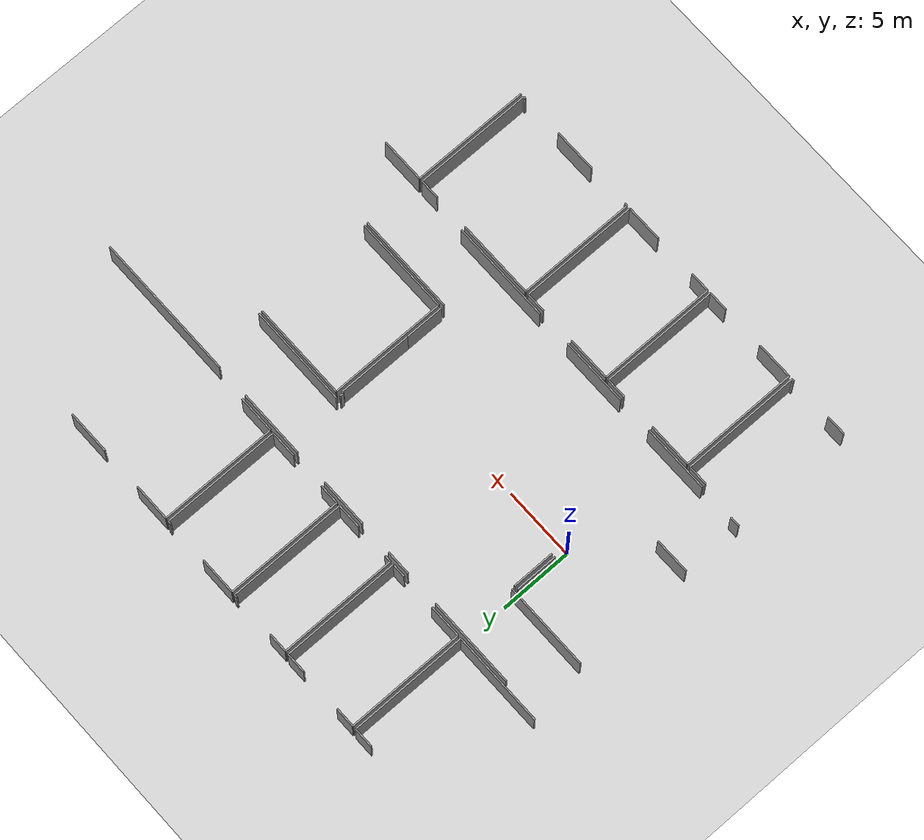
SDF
<sdf version="1.6">
 <world name="default">
  <model name="ground_plane">
   <static>1</static>
   <link name="link">
    <collision name="collision">
     <geometry><plane><normal>0 0 1</normal><size>100 100</size></plane></geometry>
     <surface><friction><ode><mu>100</mu><mu2>50</mu2></ode></friction></surface>
    </collision>
    <visual name="visual">
     <cast_shadows>0</cast_shadows>
     <geometry><plane><normal>0 0 1</normal><size>100 100</size></plane></geometry>
     <material>
      <script><uri>file://media/materials/scripts/gazebo.material</uri><name>Gazebo/Grey</name></script>
     </material>
    </visual>
   </link>
  </model>
  <model name="50041185">
   <static>1</static>
   <link name="Wall_59">
    <collision name="Wall_59_Collision">
     <geometry><box><size>1.38321534336 0.1 2.5</size></box></geometry>
     <pose>0.691607671679 0 1.25 0 0 0</pose>
    </collision>
    <visual name="Wall_59_Visual">
     <pose>0.691607671679 0 1.25 0 0 0</pose>
     <geometry><box><size>1.38321534336 0.1 2.5</size></box></geometry>
     <material>
      <script><uri>file://media/materials/scripts/gazebo.material</uri><name>Gazebo/Grey</name></script>
      <ambient>1 1 1 1</ambient>
     </material>
    </visual>
    <pose>69.0018048018 -25.3483140355 0 0 0 0.0</pose>
   </link>
   <link name="Wall_60">
    <collision name="Wall_60_Collision">
     <geometry><box><size>8.23866597186 0.1 2.5</size></box></geometry>
     <pose>4.11933298593 0 1.25 0 0 0</pose>
    </collision>
    <visual name="Wall_60_Visual">
     <pose>4.11933298593 0 1.25 0 0 0</pose>
     <geometry><box><size>8.23866597186 0.1 2.5</size></box></geometry>
     <material>
      <script><uri>file://media/materials/scripts/gazebo.material</uri><name>Gazebo/Grey</name></script>
      <ambient>1 1 1 1</ambient>
     </material>
    </visual>
    <pose>70.3850201451 -25.3483140355 0 0 0 -1.57079632679</pose>
   </link>
   <link name="Wall_61">
    <collision name="Wall_61_Collision">
     <geometry><box><size>0.181496968696 0.1 2.5</size></box></geometry>
     <pose>0.0907484843478 0 1.25 0 0 0</pose>
    </collision>
    <visual name="Wall_61_Visual">
     <pose>0.0907484843478 0 1.25 0 0 0</pose>
     <geometry><box><size>0.181496968696 0.1 2.5</size></box></geometry>
     <material>
      <script><uri>file://media/materials/scripts/gazebo.material</uri><name>Gazebo/Grey</name></script>
      <ambient>1 1 1 1</ambient>
     </material>
    </visual>
    <pose>70.3850201451 -33.5869800074 0 0 0 3.14159265359</pose>
   </link>
   <link name="Wall_62">
    <collision name="Wall_62_Collision">
     <geometry><box><size>1.39465876841 0.1 2.5</size></box></geometry>
     <pose>0.697329384206 0 1.25 0 0 0</pose>
    </collision>
    <visual name="Wall_62_Visual">
     <pose>0.697329384206 0 1.25 0 0 0</pose>
     <geometry><box><size>1.39465876841 0.1 2.5</size></box></geometry>
     <material>
      <script><uri>file://media/materials/scripts/gazebo.material</uri><name>Gazebo/Grey</name></script>
      <ambient>1 1 1 1</ambient>
     </material>
    </visual>
    <pose>67.2188639917 -33.5869800074 0 0 0 -3.13904094128</pose>
   </link>
   <link name="Wall_63">
    <collision name="Wall_63_Collision">
     <geometry><box><size>8.23663239238 0.1 2.5</size></box></geometry>
     <pose>4.11831619619 0 1.25 0 0 0</pose>
    </collision>
    <visual name="Wall_63_Visual">
     <pose>4.11831619619 0 1.25 0 0 0</pose>
     <geometry><box><size>8.23663239238 0.1 2.5</size></box></geometry>
     <material>
      <script><uri>file://media/materials/scripts/gazebo.material</uri><name>Gazebo/Grey</name></script>
      <ambient>1 1 1 1</ambient>
     </material>
    </visual>
    <pose>70.6310832624 -33.5869800074 0 0 0 1.57079632679</pose>
   </link>
   <link name="Wall_64">
    <collision name="Wall_64_Collision">
     <geometry><box><size>3.09637895754 0.1 2.5</size></box></geometry>
     <pose>1.54818947877 0 1.25 0 0 0</pose>
    </collision>
    <visual name="Wall_64_Visual">
     <pose>1.54818947877 0 1.25 0 0 0</pose>
     <geometry><box><size>3.09637895754 0.1 2.5</size></box></geometry>
     <material>
      <script><uri>file://media/materials/scripts/gazebo.material</uri><name>Gazebo/Grey</name></script>
      <ambient>1 1 1 1</ambient>
     </material>
    </visual>
    <pose>70.6310832624 -25.350347615 0 0 0 0.0</pose>
   </link>
   <link name="Wall_65">
    <collision name="Wall_65_Collision">
     <geometry><box><size>1.38766379847 0.1 2.5</size></box></geometry>
     <pose>0.693831899236 0 1.25 0 0 0</pose>
    </collision>
    <visual name="Wall_65_Visual">
     <pose>0.693831899236 0 1.25 0 0 0</pose>
     <geometry><box><size>1.38766379847 0.1 2.5</size></box></geometry>
     <material>
      <script><uri>file://media/materials/scripts/gazebo.material</uri><name>Gazebo/Grey</name></script>
      <ambient>1 1 1 1</ambient>
     </material>
    </visual>
    <pose>76.2188512818 -25.350347615 0 0 0 0.0</pose>
   </link>
   <link name="Wall_66">
    <collision name="Wall_66_Collision">
     <geometry><box><size>8.2375220834 0.1 2.5</size></box></geometry>
     <pose>4.1187610417 0 1.25 0 0 0</pose>
    </collision>
    <visual name="Wall_66_Visual">
     <pose>4.1187610417 0 1.25 0 0 0</pose>
     <geometry><box><size>8.2375220834 0.1 2.5</size></box></geometry>
     <material>
      <script><uri>file://media/materials/scripts/gazebo.material</uri><name>Gazebo/Grey</name></script>
      <ambient>1 1 1 1</ambient>
     </material>
    </visual>
    <pose>77.6065150803 -25.350347615 0 0 0 -1.57079632679</pose>
   </link>
   <link name="Wall_67">
    <collision name="Wall_67_Collision">
     <geometry><box><size>1.39605231383 0.1 2.5</size></box></geometry>
     <pose>0.698026156916 0 1.25 0 0 0</pose>
    </collision>
    <visual name="Wall_67_Visual">
     <pose>0.698026156916 0 1.25 0 0 0</pose>
     <geometry><box><size>1.39605231383 0.1 2.5</size></box></geometry>
     <material>
      <script><uri>file://media/materials/scripts/gazebo.material</uri><name>Gazebo/Grey</name></script>
      <ambient>1 1 1 1</ambient>
     </material>
    </visual>
    <pose>77.6065150803 -33.5878696984 0 0 0 3.14159265359</pose>
   </link>
   <link name="Wall_68">
    <collision name="Wall_68_Collision">
     <geometry><box><size>2.58785714146 0.1 2.5</size></box></geometry>
     <pose>1.29392857073 0 1.25 0 0 0</pose>
    </collision>
    <visual name="Wall_68_Visual">
     <pose>1.29392857073 0 1.25 0 0 0</pose>
     <geometry><box><size>2.58785714146 0.1 2.5</size></box></geometry>
     <material>
      <script><uri>file://media/materials/scripts/gazebo.material</uri><name>Gazebo/Grey</name></script>
      <ambient>1 1 1 1</ambient>
     </material>
    </visual>
    <pose>73.2189402509 -33.5878696984 0 0 0 3.14124885909</pose>
   </link>
   <link name="Wall_69">
    <collision name="Wall_69_Collision">
     <geometry><box><size>8.23663239238 0.1 2.5</size></box></geometry>
     <pose>4.11831619619 0 1.25 0 0 0</pose>
    </collision>
    <visual name="Wall_69_Visual">
     <pose>4.11831619619 0 1.25 0 0 0</pose>
     <geometry><box><size>8.23663239238 0.1 2.5</size></box></geometry>
     <material>
      <script><uri>file://media/materials/scripts/gazebo.material</uri><name>Gazebo/Grey</name></script>
      <ambient>1 1 1 1</ambient>
     </material>
    </visual>
    <pose>77.8359282655 -33.5869800074 0 0 0 1.57079632679</pose>
   </link>
   <link name="Wall_70">
    <collision name="Wall_70_Collision">
     <geometry><box><size>3.08735494859 0.1 2.5</size></box></geometry>
     <pose>1.54367747429 0 1.25 0 0 0</pose>
    </collision>
    <visual name="Wall_70_Visual">
     <pose>1.54367747429 0 1.25 0 0 0</pose>
     <geometry><box><size>3.08735494859 0.1 2.5</size></box></geometry>
     <material>
      <script><uri>file://media/materials/scripts/gazebo.material</uri><name>Gazebo/Grey</name></script>
      <ambient>1 1 1 1</ambient>
     </material>
    </visual>
    <pose>77.8359282655 -25.350347615 0 0 0 0.0</pose>
   </link>
   <link name="Wall_71">
    <collision name="Wall_71_Collision">
     <geometry><box><size>1.38181725746 0.1 2.5</size></box></geometry>
     <pose>0.690908628732 0 1.25 0 0 0</pose>
    </collision>
    <visual name="Wall_71_Visual">
     <pose>0.690908628732 0 1.25 0 0 0</pose>
     <geometry><box><size>1.38181725746 0.1 2.5</size></box></geometry>
     <material>
      <script><uri>file://media/materials/scripts/gazebo.material</uri><name>Gazebo/Grey</name></script>
      <ambient>1 1 1 1</ambient>
     </material>
    </visual>
    <pose>83.4174684477 -25.350347615 0 0 0 0.0</pose>
   </link>
   <link name="Wall_72">
    <collision name="Wall_72_Collision">
     <geometry><box><size>8.23116714752 0.1 2.5</size></box></geometry>
     <pose>4.11558357376 0 1.25 0 0 0</pose>
    </collision>
    <visual name="Wall_72_Visual">
     <pose>4.11558357376 0 1.25 0 0 0</pose>
     <geometry><box><size>8.23116714752 0.1 2.5</size></box></geometry>
     <material>
      <script><uri>file://media/materials/scripts/gazebo.material</uri><name>Gazebo/Grey</name></script>
      <ambient>1 1 1 1</ambient>
     </material>
    </visual>
    <pose>84.7992857052 -25.350347615 0 0 0 -1.57079632679</pose>
   </link>
   <link name="Wall_73">
    <collision name="Wall_73_Collision">
     <geometry><box><size>2.57845168342 0.1 2.5</size></box></geometry>
     <pose>1.28922584171 0 1.25 0 0 0</pose>
    </collision>
    <visual name="Wall_73_Visual">
     <pose>1.28922584171 0 1.25 0 0 0</pose>
     <geometry><box><size>2.57845168342 0.1 2.5</size></box></geometry>
     <material>
      <script><uri>file://media/materials/scripts/gazebo.material</uri><name>Gazebo/Grey</name></script>
      <ambient>1 1 1 1</ambient>
     </material>
    </visual>
    <pose>84.7992857052 -33.5815147625 0 0 0 3.14159265359</pose>
   </link>
   <link name="Wall_74">
    <collision name="Wall_74_Collision">
     <geometry><box><size>1.39352105658 0.1 2.5</size></box></geometry>
     <pose>0.696760528292 0 1.25 0 0 0</pose>
    </collision>
    <visual name="Wall_74_Visual">
     <pose>0.696760528292 0 1.25 0 0 0</pose>
     <geometry><box><size>1.39352105658 0.1 2.5</size></box></geometry>
     <material>
      <script><uri>file://media/materials/scripts/gazebo.material</uri><name>Gazebo/Grey</name></script>
      <ambient>1 1 1 1</ambient>
     </material>
    </visual>
    <pose>79.229438605 -33.5815147625 0 0 0 -3.13767074739</pose>
   </link>
   <link name="Wall_75">
    <collision name="Wall_75_Collision">
     <geometry><box><size>8.23726788597 0.1 2.5</size></box></geometry>
     <pose>4.11863394298 0 1.25 0 0 0</pose>
    </collision>
    <visual name="Wall_75_Visual">
     <pose>4.11863394298 0 1.25 0 0 0</pose>
     <geometry><box><size>8.23726788597 0.1 2.5</size></box></geometry>
     <material>
      <script><uri>file://media/materials/scripts/gazebo.material</uri><name>Gazebo/Grey</name></script>
      <ambient>1 1 1 1</ambient>
     </material>
    </visual>
    <pose>85.0339099378 -33.5886322907 0 0 0 1.57079632679</pose>
   </link>
   <link name="Wall_76">
    <collision name="Wall_76_Collision">
     <geometry><box><size>5.50833132094 0.1 2.5</size></box></geometry>
     <pose>2.75416566047 0 1.25 0 0 0</pose>
    </collision>
    <visual name="Wall_76_Visual">
     <pose>2.75416566047 0 1.25 0 0 0</pose>
     <geometry><box><size>5.50833132094 0.1 2.5</size></box></geometry>
     <material>
      <script><uri>file://media/materials/scripts/gazebo.material</uri><name>Gazebo/Grey</name></script>
      <ambient>1 1 1 1</ambient>
     </material>
    </visual>
    <pose>85.0339099378 -25.3513644047 0 0 0 0.0</pose>
   </link>
   <link name="Wall_77">
    <collision name="Wall_77_Collision">
     <geometry><box><size>1.38219855362 0.1 2.5</size></box></geometry>
     <pose>0.691099276808 0 1.25 0 0 0</pose>
    </collision>
    <visual name="Wall_77_Visual">
     <pose>0.691099276808 0 1.25 0 0 0</pose>
     <geometry><box><size>1.38219855362 0.1 2.5</size></box></geometry>
     <material>
      <script><uri>file://media/materials/scripts/gazebo.material</uri><name>Gazebo/Grey</name></script>
      <ambient>1 1 1 1</ambient>
     </material>
    </visual>
    <pose>93.025368904 -25.3513644047 0 0 0 0.0</pose>
   </link>
   <link name="Wall_78">
    <collision name="Wall_78_Collision">
     <geometry><box><size>8.23129424624 0.1 2.5</size></box></geometry>
     <pose>4.11564712312 0 1.25 0 0 0</pose>
    </collision>
    <visual name="Wall_78_Visual">
     <pose>4.11564712312 0 1.25 0 0 0</pose>
     <geometry><box><size>8.23129424624 0.1 2.5</size></box></geometry>
     <material>
      <script><uri>file://media/materials/scripts/gazebo.material</uri><name>Gazebo/Grey</name></script>
      <ambient>1 1 1 1</ambient>
     </material>
    </visual>
    <pose>94.4075674576 -25.3513644047 0 0 0 -1.57079632679</pose>
   </link>
   <link name="Wall_79">
    <collision name="Wall_79_Collision">
     <geometry><box><size>0.18543702894 0.1 2.5</size></box></geometry>
     <pose>0.0927185144702 0 1.25 0 0 0</pose>
    </collision>
    <visual name="Wall_79_Visual">
     <pose>0.0927185144702 0 1.25 0 0 0</pose>
     <geometry><box><size>0.18543702894 0.1 2.5</size></box></geometry>
     <material>
      <script><uri>file://media/materials/scripts/gazebo.material</uri><name>Gazebo/Grey</name></script>
      <ambient>1 1 1 1</ambient>
     </material>
    </visual>
    <pose>94.4075674576 -33.582658651 0 0 0 3.14159265359</pose>
   </link>
   <link name="Wall_80">
    <collision name="Wall_80_Collision">
     <geometry><box><size>3.03473607951 0.1 2.5</size></box></geometry>
     <pose>1.51736803976 0 1.25 0 0 0</pose>
    </collision>
    <visual name="Wall_80_Visual">
     <pose>1.51736803976 0 1.25 0 0 0</pose>
     <geometry><box><size>3.03473607951 0.1 2.5</size></box></geometry>
     <material>
      <script><uri>file://media/materials/scripts/gazebo.material</uri><name>Gazebo/Grey</name></script>
      <ambient>1 1 1 1</ambient>
     </material>
    </visual>
    <pose>91.2561547554 -33.582658651 0 0 0 3.14159265359</pose>
   </link>
   <link name="Wall_81">
    <collision name="Wall_81_Collision">
     <geometry><box><size>0.206113604187 0.1 2.5</size></box></geometry>
     <pose>0.103056802093 0 1.25 0 0 0</pose>
    </collision>
    <visual name="Wall_81_Visual">
     <pose>0.103056802093 0 1.25 0 0 0</pose>
     <geometry><box><size>0.206113604187 0.1 2.5</size></box></geometry>
     <material>
      <script><uri>file://media/materials/scripts/gazebo.material</uri><name>Gazebo/Grey</name></script>
      <ambient>1 1 1 1</ambient>
     </material>
    </visual>
    <pose>85.239936959 -33.582658651 0 0 0 -3.11260632662</pose>
   </link>
   <link name="Wall_82">
    <collision name="Wall_82_Collision">
     <geometry><box><size>8.23409041803 0.1 2.5</size></box></geometry>
     <pose>4.11704520901 0 1.25 0 0 0</pose>
    </collision>
    <visual name="Wall_82_Visual">
     <pose>4.11704520901 0 1.25 0 0 0</pose>
     <geometry><box><size>8.23409041803 0.1 2.5</size></box></geometry>
     <material>
      <script><uri>file://media/materials/scripts/gazebo.material</uri><name>Gazebo/Grey</name></script>
      <ambient>1 1 1 1</ambient>
     </material>
    </visual>
    <pose>94.6537576736 -33.5854548228 0 0 0 1.57079632679</pose>
   </link>
   <link name="Wall_83">
    <collision name="Wall_83_Collision">
     <geometry><box><size>3.13272919076 0.1 2.5</size></box></geometry>
     <pose>1.56636459538 0 1.25 0 0 0</pose>
    </collision>
    <visual name="Wall_83_Visual">
     <pose>1.56636459538 0 1.25 0 0 0</pose>
     <geometry><box><size>3.13272919076 0.1 2.5</size></box></geometry>
     <material>
      <script><uri>file://media/materials/scripts/gazebo.material</uri><name>Gazebo/Grey</name></script>
      <ambient>1 1 1 1</ambient>
     </material>
    </visual>
    <pose>94.6537576736 -25.3513644047 0 0 0 0.0</pose>
   </link>
   <link name="Wall_172">
    <collision name="Wall_172_Collision">
     <geometry><box><size>2.96127302076 0.1 2.5</size></box></geometry>
     <pose>1.48063651038 0 1.25 0 0 0</pose>
    </collision>
    <visual name="Wall_172_Visual">
     <pose>1.48063651038 0 1.25 0 0 0</pose>
     <geometry><box><size>2.96127302076 0.1 2.5</size></box></geometry>
     <material>
      <script><uri>file://media/materials/scripts/gazebo.material</uri><name>Gazebo/Grey</name></script>
      <ambient>1 1 1 1</ambient>
     </material>
    </visual>
    <pose>71.6054220313 -12.7202938522 0 0 0 -1.57079632679</pose>
   </link>
   <link name="Wall_173">
    <collision name="Wall_173_Collision">
     <geometry><box><size>2.46348447286 0.1 2.5</size></box></geometry>
     <pose>1.23174223643 0 1.25 0 0 0</pose>
    </collision>
    <visual name="Wall_173_Visual">
     <pose>1.23174223643 0 1.25 0 0 0</pose>
     <geometry><box><size>2.46348447286 0.1 2.5</size></box></geometry>
     <material>
      <script><uri>file://media/materials/scripts/gazebo.material</uri><name>Gazebo/Grey</name></script>
      <ambient>1 1 1 1</ambient>
     </material>
    </visual>
    <pose>68.2913229706 -20.8683384385 0 0 0 -3.1347823162</pose>
   </link>
   <link name="Wall_174">
    <collision name="Wall_174_Collision">
     <geometry><box><size>2.70351682152 0.1 2.5</size></box></geometry>
     <pose>1.35175841076 0 1.25 0 0 0</pose>
    </collision>
    <visual name="Wall_174_Visual">
     <pose>1.35175841076 0 1.25 0 0 0</pose>
     <geometry><box><size>2.70351682152 0.1 2.5</size></box></geometry>
     <material>
      <script><uri>file://media/materials/scripts/gazebo.material</uri><name>Gazebo/Grey</name></script>
      <ambient>1 1 1 1</ambient>
     </material>
    </visual>
    <pose>87.6178268661 -18.168380381 0 0 0 -1.57079632679</pose>
   </link>
   <link name="Wall_175">
    <collision name="Wall_175_Collision">
     <geometry><box><size>0.251782559514 0.1 2.5</size></box></geometry>
     <pose>0.125891279757 0 1.25 0 0 0</pose>
    </collision>
    <visual name="Wall_175_Visual">
     <pose>0.125891279757 0 1.25 0 0 0</pose>
     <geometry><box><size>0.251782559514 0.1 2.5</size></box></geometry>
     <material>
      <script><uri>file://media/materials/scripts/gazebo.material</uri><name>Gazebo/Grey</name></script>
      <ambient>1 1 1 1</ambient>
     </material>
    </visual>
    <pose>87.4809415473 -12.7052962036 0 0 0 -1.57079632679</pose>
   </link>
   <link name="Wall_176">
    <collision name="Wall_176_Collision">
     <geometry><box><size>0.122268966306 0.1 2.5</size></box></geometry>
     <pose>0.0611344831531 0 1.25 0 0 0</pose>
    </collision>
    <visual name="Wall_176_Visual">
     <pose>0.0611344831531 0 1.25 0 0 0</pose>
     <geometry><box><size>0.122268966306 0.1 2.5</size></box></geometry>
     <material>
      <script><uri>file://media/materials/scripts/gazebo.material</uri><name>Gazebo/Grey</name></script>
      <ambient>1 1 1 1</ambient>
     </material>
    </visual>
    <pose>87.4809415473 -12.9570787631 0 0 0 0.0</pose>
   </link>
   <link name="Wall_177">
    <collision name="Wall_177_Collision">
     <geometry><box><size>5.21132211547 0.1 2.5</size></box></geometry>
     <pose>2.60566105773 0 1.25 0 0 0</pose>
    </collision>
    <visual name="Wall_177_Visual">
     <pose>2.60566105773 0 1.25 0 0 0</pose>
     <geometry><box><size>5.21132211547 0.1 2.5</size></box></geometry>
     <material>
      <script><uri>file://media/materials/scripts/gazebo.material</uri><name>Gazebo/Grey</name></script>
      <ambient>1 1 1 1</ambient>
     </material>
    </visual>
    <pose>87.6032105136 -12.9570787631 0 0 0 -1.56799159292</pose>
   </link>
   <link name="Wall_178">
    <collision name="Wall_178_Collision">
     <geometry><box><size>2.97779585404 0.1 2.5</size></box></geometry>
     <pose>1.48889792702 0 1.25 0 0 0</pose>
    </collision>
    <visual name="Wall_178_Visual">
     <pose>1.48889792702 0 1.25 0 0 0</pose>
     <geometry><box><size>2.97779585404 0.1 2.5</size></box></geometry>
     <material>
      <script><uri>file://media/materials/scripts/gazebo.material</uri><name>Gazebo/Grey</name></script>
      <ambient>1 1 1 1</ambient>
     </material>
    </visual>
    <pose>71.871948042 -15.6661879282 0 0 0 1.57079632679</pose>
   </link>
   <link name="Wall_179">
    <collision name="Wall_179_Collision">
     <geometry><box><size>8.18020056178 0.1 2.5</size></box></geometry>
     <pose>4.09010028089 0 1.25 0 0 0</pose>
    </collision>
    <visual name="Wall_179_Visual">
     <pose>4.09010028089 0 1.25 0 0 0</pose>
     <geometry><box><size>8.18020056178 0.1 2.5</size></box></geometry>
     <material>
      <script><uri>file://media/materials/scripts/gazebo.material</uri><name>Gazebo/Grey</name></script>
      <ambient>1 1 1 1</ambient>
     </material>
    </visual>
    <pose>87.8571537513 -20.8884200358 0 0 0 1.57079632679</pose>
   </link>
   <link name="Wall_180">
    <collision name="Wall_180_Collision">
     <geometry><box><size>6.76724411851 0.1 2.5</size></box></geometry>
     <pose>3.38362205925 0 1.25 0 0 0</pose>
    </collision>
    <visual name="Wall_180_Visual">
     <pose>3.38362205925 0 1.25 0 0 0</pose>
     <geometry><box><size>6.76724411851 0.1 2.5</size></box></geometry>
     <material>
      <script><uri>file://media/materials/scripts/gazebo.material</uri><name>Gazebo/Grey</name></script>
      <ambient>1 1 1 1</ambient>
     </material>
    </visual>
    <pose>87.8571537513 -12.7082194741 0 0 0 0.0</pose>
   </link>
   <link name="Wall_183">
    <collision name="Wall_183_Collision">
     <geometry><box><size>6.75493304953 0.1 2.5</size></box></geometry>
     <pose>3.37746652477 0 1.25 0 0 0</pose>
    </collision>
    <visual name="Wall_183_Visual">
     <pose>3.37746652477 0 1.25 0 0 0</pose>
     <geometry><box><size>6.75493304953 0.1 2.5</size></box></geometry>
     <material>
      <script><uri>file://media/materials/scripts/gazebo.material</uri><name>Gazebo/Grey</name></script>
      <ambient>1 1 1 1</ambient>
     </material>
    </visual>
    <pose>94.6120692942 -20.873041091 0 0 0 -3.13931595329</pose>
   </link>
   <link name="Wall_254">
    <collision name="Wall_254_Collision">
     <geometry><box><size>6.98013447044 0.1 2.5</size></box></geometry>
     <pose>3.49006723522 0 1.25 0 0 0</pose>
    </collision>
    <visual name="Wall_254_Visual">
     <pose>3.49006723522 0 1.25 0 0 0</pose>
     <geometry><box><size>6.98013447044 0.1 2.5</size></box></geometry>
     <material>
      <script><uri>file://media/materials/scripts/gazebo.material</uri><name>Gazebo/Grey</name></script>
      <ambient>1 1 1 1</ambient>
     </material>
    </visual>
    <pose>87.6535416058 -21.1166893326 0 0 0 0.0</pose>
   </link>
   <link name="Wall_268">
    <collision name="Wall_268_Collision">
     <geometry><box><size>7.12769608155 0.1 2.5</size></box></geometry>
     <pose>3.56384804077 0 1.25 0 0 0</pose>
    </collision>
    <visual name="Wall_268_Visual">
     <pose>3.56384804077 0 1.25 0 0 0</pose>
     <geometry><box><size>7.12769608155 0.1 2.5</size></box></geometry>
     <material>
      <script><uri>file://media/materials/scripts/gazebo.material</uri><name>Gazebo/Grey</name></script>
      <ambient>1 1 1 1</ambient>
     </material>
    </visual>
    <pose>90.5260997217 -25.0711117325 0 0 0 3.14159265359</pose>
   </link>
   <link name="Wall_269">
    <collision name="Wall_269_Collision">
     <geometry><box><size>4.74154475781 0.1 2.5</size></box></geometry>
     <pose>2.37077237891 0 1.25 0 0 0</pose>
    </collision>
    <visual name="Wall_269_Visual">
     <pose>2.37077237891 0 1.25 0 0 0</pose>
     <geometry><box><size>4.74154475781 0.1 2.5</size></box></geometry>
     <material>
      <script><uri>file://media/materials/scripts/gazebo.material</uri><name>Gazebo/Grey</name></script>
      <ambient>1 1 1 1</ambient>
     </material>
    </visual>
    <pose>80.9319259269 -25.0711117325 0 0 0 3.14159265359</pose>
   </link>
   <link name="Wall_270">
    <collision name="Wall_270_Collision">
     <geometry><box><size>4.73722340142 0.1 2.5</size></box></geometry>
     <pose>2.36861170071 0 1.25 0 0 0</pose>
    </collision>
    <visual name="Wall_270_Visual">
     <pose>2.36861170071 0 1.25 0 0 0</pose>
     <geometry><box><size>4.73722340142 0.1 2.5</size></box></geometry>
     <material>
      <script><uri>file://media/materials/scripts/gazebo.material</uri><name>Gazebo/Grey</name></script>
      <ambient>1 1 1 1</ambient>
     </material>
    </visual>
    <pose>73.715260743 -25.0711117325 0 0 0 3.14159265359</pose>
   </link>
   <link name="Wall_271">
    <collision name="Wall_271_Collision">
     <geometry><box><size>0.711625719696 0.1 2.5</size></box></geometry>
     <pose>0.355812859848 0 1.25 0 0 0</pose>
    </collision>
    <visual name="Wall_271_Visual">
     <pose>0.355812859848 0 1.25 0 0 0</pose>
     <geometry><box><size>0.711625719696 0.1 2.5</size></box></geometry>
     <material>
      <script><uri>file://media/materials/scripts/gazebo.material</uri><name>Gazebo/Grey</name></script>
      <ambient>1 1 1 1</ambient>
     </material>
    </visual>
    <pose>66.5016459284 -25.0711117325 0 0 0 3.14159265359</pose>
   </link>
   <link name="Wall_311">
    <collision name="Wall_311_Collision">
     <geometry><box><size>1.38766379847 0.1 2.5</size></box></geometry>
     <pose>0.693831899236 0 1.25 0 0 0</pose>
    </collision>
    <visual name="Wall_311_Visual">
     <pose>0.693831899236 0 1.25 0 0 0</pose>
     <geometry><box><size>1.38766379847 0.1 2.5</size></box></geometry>
     <material>
      <script><uri>file://media/materials/scripts/gazebo.material</uri><name>Gazebo/Grey</name></script>
      <ambient>1 1 1 1</ambient>
     </material>
    </visual>
    <pose>70.1984392277 -0.0176667217428 0 0 0 0.0</pose>
   </link>
   <link name="Wall_312">
    <collision name="Wall_312_Collision">
     <geometry><box><size>8.20739968734 0.1 2.5</size></box></geometry>
     <pose>4.10369984367 0 1.25 0 0 0</pose>
    </collision>
    <visual name="Wall_312_Visual">
     <pose>4.10369984367 0 1.25 0 0 0</pose>
     <geometry><box><size>8.20739968734 0.1 2.5</size></box></geometry>
     <material>
      <script><uri>file://media/materials/scripts/gazebo.material</uri><name>Gazebo/Grey</name></script>
      <ambient>1 1 1 1</ambient>
     </material>
    </visual>
    <pose>71.5861030262 -0.0176667217428 0 0 0 -1.57079632679</pose>
   </link>
   <link name="Wall_313">
    <collision name="Wall_313_Collision">
     <geometry><box><size>6.50338718082 0.1 2.5</size></box></geometry>
     <pose>3.25169359041 0 1.25 0 0 0</pose>
    </collision>
    <visual name="Wall_313_Visual">
     <pose>3.25169359041 0 1.25 0 0 0</pose>
     <geometry><box><size>6.50338718082 0.1 2.5</size></box></geometry>
     <material>
      <script><uri>file://media/materials/scripts/gazebo.material</uri><name>Gazebo/Grey</name></script>
      <ambient>1 1 1 1</ambient>
     </material>
    </visual>
    <pose>71.5861030262 -8.22506640908 0 0 0 3.14159265359</pose>
   </link>
   <link name="Wall_317">
    <collision name="Wall_317_Collision">
     <geometry><box><size>8.2122294386 0.1 2.5</size></box></geometry>
     <pose>4.1061147193 0 1.25 0 0 0</pose>
    </collision>
    <visual name="Wall_317_Visual">
     <pose>4.1061147193 0 1.25 0 0 0</pose>
     <geometry><box><size>8.2122294386 0.1 2.5</size></box></geometry>
     <material>
      <script><uri>file://media/materials/scripts/gazebo.material</uri><name>Gazebo/Grey</name></script>
      <ambient>1 1 1 1</ambient>
     </material>
    </visual>
    <pose>71.8345810191 -8.22188894114 0 0 0 1.57079632679</pose>
   </link>
   <link name="Wall_318">
    <collision name="Wall_318_Collision">
     <geometry><box><size>1.3979587946 0.1 2.5</size></box></geometry>
     <pose>0.698979397298 0 1.25 0 0 0</pose>
    </collision>
    <visual name="Wall_318_Visual">
     <pose>0.698979397298 0 1.25 0 0 0</pose>
     <geometry><box><size>1.3979587946 0.1 2.5</size></box></geometry>
     <material>
      <script><uri>file://media/materials/scripts/gazebo.material</uri><name>Gazebo/Grey</name></script>
      <ambient>1 1 1 1</ambient>
     </material>
    </visual>
    <pose>71.8345810191 -0.00965950253562 0 0 0 0.0</pose>
   </link>
   <link name="Wall_319">
    <collision name="Wall_319_Collision">
     <geometry><box><size>1.40024657151 0.1 2.5</size></box></geometry>
     <pose>0.700123285756 0 1.25 0 0 0</pose>
    </collision>
    <visual name="Wall_319_Visual">
     <pose>0.700123285756 0 1.25 0 0 0</pose>
     <geometry><box><size>1.40024657151 0.1 2.5</size></box></geometry>
     <material>
      <script><uri>file://media/materials/scripts/gazebo.material</uri><name>Gazebo/Grey</name></script>
      <ambient>1 1 1 1</ambient>
     </material>
    </visual>
    <pose>76.1897456755 -0.00965950253562 0 0 0 0.0</pose>
   </link>
   <link name="Wall_320">
    <collision name="Wall_320_Collision">
     <geometry><box><size>8.2122294386 0.1 2.5</size></box></geometry>
     <pose>4.1061147193 0 1.25 0 0 0</pose>
    </collision>
    <visual name="Wall_320_Visual">
     <pose>4.1061147193 0 1.25 0 0 0</pose>
     <geometry><box><size>8.2122294386 0.1 2.5</size></box></geometry>
     <material>
      <script><uri>file://media/materials/scripts/gazebo.material</uri><name>Gazebo/Grey</name></script>
      <ambient>1 1 1 1</ambient>
     </material>
    </visual>
    <pose>77.589992247 -0.00965950253562 0 0 0 -1.57079632679</pose>
   </link>
   <link name="Wall_321">
    <collision name="Wall_321_Collision">
     <geometry><box><size>0.980947902236 0.1 2.5</size></box></geometry>
     <pose>0.490473951118 0 1.25 0 0 0</pose>
    </collision>
    <visual name="Wall_321_Visual">
     <pose>0.490473951118 0 1.25 0 0 0</pose>
     <geometry><box><size>0.980947902236 0.1 2.5</size></box></geometry>
     <material>
      <script><uri>file://media/materials/scripts/gazebo.material</uri><name>Gazebo/Grey</name></script>
      <ambient>1 1 1 1</ambient>
     </material>
    </visual>
    <pose>77.589992247 -8.22188894114 0 0 0 3.14159265359</pose>
   </link>
   <link name="Wall_322">
    <collision name="Wall_322_Collision">
     <geometry><box><size>2.30684172397 0.1 2.5</size></box></geometry>
     <pose>1.15342086198 0 1.25 0 0 0</pose>
    </collision>
    <visual name="Wall_322_Visual">
     <pose>1.15342086198 0 1.25 0 0 0</pose>
     <geometry><box><size>2.30684172397 0.1 2.5</size></box></geometry>
     <material>
      <script><uri>file://media/materials/scripts/gazebo.material</uri><name>Gazebo/Grey</name></script>
      <ambient>1 1 1 1</ambient>
     </material>
    </visual>
    <pose>74.141422743 -8.22188894114 0 0 0 3.14159265359</pose>
   </link>
   <link name="Wall_323">
    <collision name="Wall_323_Collision">
     <geometry><box><size>8.20447641683 0.1 2.5</size></box></geometry>
     <pose>4.10223820842 0 1.25 0 0 0</pose>
    </collision>
    <visual name="Wall_323_Visual">
     <pose>4.10223820842 0 1.25 0 0 0</pose>
     <geometry><box><size>8.20447641683 0.1 2.5</size></box></geometry>
     <material>
      <script><uri>file://media/materials/scripts/gazebo.material</uri><name>Gazebo/Grey</name></script>
      <ambient>1 1 1 1</ambient>
     </material>
    </visual>
    <pose>77.8375805488 -8.22023665781 0 0 0 1.57079632679</pose>
   </link>
   <link name="Wall_324">
    <collision name="Wall_324_Collision">
     <geometry><box><size>1.39185805615 0.1 2.5</size></box></geometry>
     <pose>0.695929028076 0 1.25 0 0 0</pose>
    </collision>
    <visual name="Wall_324_Visual">
     <pose>0.695929028076 0 1.25 0 0 0</pose>
     <geometry><box><size>1.39185805615 0.1 2.5</size></box></geometry>
     <material>
      <script><uri>file://media/materials/scripts/gazebo.material</uri><name>Gazebo/Grey</name></script>
      <ambient>1 1 1 1</ambient>
     </material>
    </visual>
    <pose>77.8375805488 -0.0157602409792 0 0 0 0.0</pose>
   </link>
   <link name="Wall_325">
    <collision name="Wall_325_Collision">
     <geometry><box><size>0.207425107081 0.1 2.5</size></box></geometry>
     <pose>0.10371255354 0 1.25 0 0 0</pose>
    </collision>
    <visual name="Wall_325_Visual">
     <pose>0.10371255354 0 1.25 0 0 0</pose>
     <geometry><box><size>0.207425107081 0.1 2.5</size></box></geometry>
     <material>
      <script><uri>file://media/materials/scripts/gazebo.material</uri><name>Gazebo/Grey</name></script>
      <ambient>1 1 1 1</ambient>
     </material>
    </visual>
    <pose>82.1963039693 -0.0157602409792 0 0 0 0.0</pose>
   </link>
   <link name="Wall_326">
    <collision name="Wall_326_Collision">
     <geometry><box><size>8.20384092325 0.1 2.5</size></box></geometry>
     <pose>4.10192046162 0 1.25 0 0 0</pose>
    </collision>
    <visual name="Wall_326_Visual">
     <pose>4.10192046162 0 1.25 0 0 0</pose>
     <geometry><box><size>8.20384092325 0.1 2.5</size></box></geometry>
     <material>
      <script><uri>file://media/materials/scripts/gazebo.material</uri><name>Gazebo/Grey</name></script>
      <ambient>1 1 1 1</ambient>
     </material>
    </visual>
    <pose>82.4037290764 -0.0157602409792 0 0 0 -1.57079632679</pose>
   </link>
   <link name="Wall_327">
    <collision name="Wall_327_Collision">
     <geometry><box><size>1.72091663595 0.1 2.5</size></box></geometry>
     <pose>0.860458317976 0 1.25 0 0 0</pose>
    </collision>
    <visual name="Wall_327_Visual">
     <pose>0.860458317976 0 1.25 0 0 0</pose>
     <geometry><box><size>1.72091663595 0.1 2.5</size></box></geometry>
     <material>
      <script><uri>file://media/materials/scripts/gazebo.material</uri><name>Gazebo/Grey</name></script>
      <ambient>1 1 1 1</ambient>
     </material>
    </visual>
    <pose>82.4037290764 -8.21960116422 0 0 0 3.14159265359</pose>
   </link>
   <link name="Wall_328">
    <collision name="Wall_328_Collision">
     <geometry><box><size>0.484882023988 0.1 2.5</size></box></geometry>
     <pose>0.242441011994 0 1.25 0 0 0</pose>
    </collision>
    <visual name="Wall_328_Visual">
     <pose>0.242441011994 0 1.25 0 0 0</pose>
     <geometry><box><size>0.484882023988 0.1 2.5</size></box></geometry>
     <material>
      <script><uri>file://media/materials/scripts/gazebo.material</uri><name>Gazebo/Grey</name></script>
      <ambient>1 1 1 1</ambient>
     </material>
    </visual>
    <pose>78.3224621564 -8.21960116422 0 0 0 -3.14028203835</pose>
   </link>
   <link name="Wall_329">
    <collision name="Wall_329_Collision">
     <geometry><box><size>8.21070425399 0.1 2.5</size></box></geometry>
     <pose>4.105352127 0 1.25 0 0 0</pose>
    </collision>
    <visual name="Wall_329_Visual">
     <pose>4.105352127 0 1.25 0 0 0</pose>
     <geometry><box><size>8.21070425399 0.1 2.5</size></box></geometry>
     <material>
      <script><uri>file://media/materials/scripts/gazebo.material</uri><name>Gazebo/Grey</name></script>
      <ambient>1 1 1 1</ambient>
     </material>
    </visual>
    <pose>82.6421662705 -8.22023665781 0 0 0 1.57079632679</pose>
   </link>
   <link name="Wall_330">
    <collision name="Wall_330_Collision">
     <geometry><box><size>2.59472031927 0.1 2.5</size></box></geometry>
     <pose>1.29736015964 0 1.25 0 0 0</pose>
    </collision>
    <visual name="Wall_330_Visual">
     <pose>1.29736015964 0 1.25 0 0 0</pose>
     <geometry><box><size>2.59472031927 0.1 2.5</size></box></geometry>
     <material>
      <script><uri>file://media/materials/scripts/gazebo.material</uri><name>Gazebo/Grey</name></script>
      <ambient>1 1 1 1</ambient>
     </material>
    </visual>
    <pose>82.6421662705 -0.00953240381805 0 0 0 0.0</pose>
   </link>
   <link name="Wall_331">
    <collision name="Wall_331_Collision">
     <geometry><box><size>0.210221278867 0.1 2.5</size></box></geometry>
     <pose>0.105110639434 0 1.25 0 0 0</pose>
    </collision>
    <visual name="Wall_331_Visual">
     <pose>0.105110639434 0 1.25 0 0 0</pose>
     <geometry><box><size>0.210221278867 0.1 2.5</size></box></geometry>
     <material>
      <script><uri>file://media/materials/scripts/gazebo.material</uri><name>Gazebo/Grey</name></script>
      <ambient>1 1 1 1</ambient>
     </material>
    </visual>
    <pose>88.1928214644 -0.00953240381805 0 0 0 0.0</pose>
   </link>
   <link name="Wall_332">
    <collision name="Wall_332_Collision">
     <geometry><box><size>8.20917906938 0.1 2.5</size></box></geometry>
     <pose>4.10458953469 0 1.25 0 0 0</pose>
    </collision>
    <visual name="Wall_332_Visual">
     <pose>4.10458953469 0 1.25 0 0 0</pose>
     <geometry><box><size>8.20917906938 0.1 2.5</size></box></geometry>
     <material>
      <script><uri>file://media/materials/scripts/gazebo.material</uri><name>Gazebo/Grey</name></script>
      <ambient>1 1 1 1</ambient>
     </material>
    </visual>
    <pose>88.4030427433 -0.00953240381805 0 0 0 -1.57079632679</pose>
   </link>
   <link name="Wall_333">
    <collision name="Wall_333_Collision">
     <geometry><box><size>1.8767396637 0.1 2.5</size></box></geometry>
     <pose>0.938369831848 0 1.25 0 0 0</pose>
    </collision>
    <visual name="Wall_333_Visual">
     <pose>0.938369831848 0 1.25 0 0 0</pose>
     <geometry><box><size>1.8767396637 0.1 2.5</size></box></geometry>
     <material>
      <script><uri>file://media/materials/scripts/gazebo.material</uri><name>Gazebo/Grey</name></script>
      <ambient>1 1 1 1</ambient>
     </material>
    </visual>
    <pose>88.4030427433 -8.2187114732 0 0 0 3.14159265359</pose>
   </link>
   <link name="Wall_334">
    <collision name="Wall_334_Collision">
     <geometry><box><size>1.40177258585 0.1 2.5</size></box></geometry>
     <pose>0.700886292927 0 1.25 0 0 0</pose>
    </collision>
    <visual name="Wall_334_Visual">
     <pose>0.700886292927 0 1.25 0 0 0</pose>
     <geometry><box><size>1.40177258585 0.1 2.5</size></box></geometry>
     <material>
      <script><uri>file://media/materials/scripts/gazebo.material</uri><name>Gazebo/Grey</name></script>
      <ambient>1 1 1 1</ambient>
     </material>
    </visual>
    <pose>84.0439380267 -8.2187114732 0 0 0 -3.1405046134</pose>
   </link>
   <link name="Wall_335">
    <collision name="Wall_335_Collision">
     <geometry><box><size>8.20333252837 0.1 2.5</size></box></geometry>
     <pose>4.10166626419 0 1.25 0 0 0</pose>
    </collision>
    <visual name="Wall_335_Visual">
     <pose>4.10166626419 0 1.25 0 0 0</pose>
     <geometry><box><size>8.20333252837 0.1 2.5</size></box></geometry>
     <material>
      <script><uri>file://media/materials/scripts/gazebo.material</uri><name>Gazebo/Grey</name></script>
      <ambient>1 1 1 1</ambient>
     </material>
    </visual>
    <pose>88.6400818516 -8.22557480395 0 0 0 1.57079632679</pose>
   </link>
   <link name="Wall_336">
    <collision name="Wall_336_Collision">
     <geometry><box><size>2.60654050001 0.1 2.5</size></box></geometry>
     <pose>1.30327025 0 1.25 0 0 0</pose>
    </collision>
    <visual name="Wall_336_Visual">
     <pose>1.30327025 0 1.25 0 0 0</pose>
     <geometry><box><size>2.60654050001 0.1 2.5</size></box></geometry>
     <material>
      <script><uri>file://media/materials/scripts/gazebo.material</uri><name>Gazebo/Grey</name></script>
      <ambient>1 1 1 1</ambient>
     </material>
    </visual>
    <pose>88.6400818516 -0.0222422755754 0 0 0 0.0</pose>
   </link>
   <link name="Wall_337">
    <collision name="Wall_337_Collision">
     <geometry><box><size>3.01923003597 0.1 2.5</size></box></geometry>
     <pose>1.50961501798 0 1.25 0 0 0</pose>
    </collision>
    <visual name="Wall_337_Visual">
     <pose>1.50961501798 0 1.25 0 0 0</pose>
     <geometry><box><size>3.01923003597 0.1 2.5</size></box></geometry>
     <material>
      <script><uri>file://media/materials/scripts/gazebo.material</uri><name>Gazebo/Grey</name></script>
      <ambient>1 1 1 1</ambient>
     </material>
    </visual>
    <pose>94.2274685748 -0.0222422755754 0 0 0 0.0</pose>
   </link>
   <link name="Wall_341">
    <collision name="Wall_341_Collision">
     <geometry><box><size>2.60272761606 0.1 2.5</size></box></geometry>
     <pose>1.30136380803 0 1.25 0 0 0</pose>
    </collision>
    <visual name="Wall_341_Visual">
     <pose>1.30136380803 0 1.25 0 0 0</pose>
     <geometry><box><size>2.60272761606 0.1 2.5</size></box></geometry>
     <material>
      <script><uri>file://media/materials/scripts/gazebo.material</uri><name>Gazebo/Grey</name></script>
      <ambient>1 1 1 1</ambient>
     </material>
    </visual>
    <pose>91.2428093901 -8.22493931036 0 0 0 -3.14134848913</pose>
   </link>
   <link name="Wall_407">
    <collision name="Wall_407_Collision">
     <geometry><box><size>6.2696526392 0.1 2.5</size></box></geometry>
     <pose>3.1348263196 0 1.25 0 0 0</pose>
    </collision>
    <visual name="Wall_407_Visual">
     <pose>3.1348263196 0 1.25 0 0 0</pose>
     <geometry><box><size>6.2696526392 0.1 2.5</size></box></geometry>
     <material>
      <script><uri>file://media/materials/scripts/gazebo.material</uri><name>Gazebo/Grey</name></script>
      <ambient>1 1 1 1</ambient>
     </material>
    </visual>
    <pose>67.8975711435 -8.50646296979 0 0 0 0.0</pose>
   </link>
   <link name="Wall_408">
    <collision name="Wall_408_Collision">
     <geometry><box><size>1.73845625898 0.1 2.5</size></box></geometry>
     <pose>0.869228129488 0 1.25 0 0 0</pose>
    </collision>
    <visual name="Wall_408_Visual">
     <pose>0.869228129488 0 1.25 0 0 0</pose>
     <geometry><box><size>1.73845625898 0.1 2.5</size></box></geometry>
     <material>
      <script><uri>file://media/materials/scripts/gazebo.material</uri><name>Gazebo/Grey</name></script>
      <ambient>1 1 1 1</ambient>
     </material>
    </visual>
    <pose>76.6040874948 -8.50646296979 0 0 0 0.0</pose>
   </link>
   <link name="Wall_409">
    <collision name="Wall_409_Collision">
     <geometry><box><size>3.40764371687 0.1 2.5</size></box></geometry>
     <pose>1.70382185844 0 1.25 0 0 0</pose>
    </collision>
    <visual name="Wall_409_Visual">
     <pose>1.70382185844 0 1.25 0 0 0</pose>
     <geometry><box><size>3.40764371687 0.1 2.5</size></box></geometry>
     <material>
      <script><uri>file://media/materials/scripts/gazebo.material</uri><name>Gazebo/Grey</name></script>
      <ambient>1 1 1 1</ambient>
     </material>
    </visual>
    <pose>80.6904383635 -8.50646296979 0 0 0 0.0</pose>
   </link>
   <link name="Wall_410">
    <collision name="Wall_410_Collision">
     <geometry><box><size>4.75361913598 0.1 2.5</size></box></geometry>
     <pose>2.37680956799 0 1.25 0 0 0</pose>
    </collision>
    <visual name="Wall_410_Visual">
     <pose>2.37680956799 0 1.25 0 0 0</pose>
     <geometry><box><size>4.75361913598 0.1 2.5</size></box></geometry>
     <material>
      <script><uri>file://media/materials/scripts/gazebo.material</uri><name>Gazebo/Grey</name></script>
      <ambient>1 1 1 1</ambient>
     </material>
    </visual>
    <pose>86.5270656719 -8.50646296979 0 0 0 0.0</pose>
   </link>
   <link name="Wall_411">
    <collision name="Wall_411_Collision">
     <geometry><box><size>10.154806238 0.1 2.5</size></box></geometry>
     <pose>5.077403119 0 1.25 0 0 0</pose>
    </collision>
    <visual name="Wall_411_Visual">
     <pose>5.077403119 0 1.25 0 0 0</pose>
     <geometry><box><size>10.154806238 0.1 2.5</size></box></geometry>
     <material>
      <script><uri>file://media/materials/scripts/gazebo.material</uri><name>Gazebo/Grey</name></script>
      <ambient>1 1 1 1</ambient>
     </material>
    </visual>
    <pose>93.6205721984 -8.50646296979 0 0 0 0.0</pose>
   </link>
   <link name="Wall_423">
    <collision name="Wall_423_Collision">
     <geometry><box><size>7.06490931507 0.1 2.5</size></box></geometry>
     <pose>3.53245465753 0 1.25 0 0 0</pose>
    </collision>
    <visual name="Wall_423_Visual">
     <pose>3.53245465753 0 1.25 0 0 0</pose>
     <geometry><box><size>7.06490931507 0.1 2.5</size></box></geometry>
     <material>
      <script><uri>file://media/materials/scripts/gazebo.material</uri><name>Gazebo/Grey</name></script>
      <ambient>1 1 1 1</ambient>
     </material>
    </visual>
    <pose>94.6146112686 -12.4686383914 0 0 0 3.14159265359</pose>
   </link>
   <link name="Wall_424">
    <collision name="Wall_424_Collision">
     <geometry><box><size>6.06082944623 0.1 2.5</size></box></geometry>
     <pose>3.03041472312 0 1.25 0 0 0</pose>
    </collision>
    <visual name="Wall_424_Visual">
     <pose>3.03041472312 0 1.25 0 0 0</pose>
     <geometry><box><size>6.06082944623 0.1 2.5</size></box></geometry>
     <material>
      <script><uri>file://media/materials/scripts/gazebo.material</uri><name>Gazebo/Grey</name></script>
      <ambient>1 1 1 1</ambient>
     </material>
    </visual>
    <pose>71.8466553972 -12.4686383914 0 0 0 3.14159265359</pose>
   </link>
   <pose>-71.7 16.7921910548 0 0 0 0</pose>
  </model>
 </world>
</sdf>
